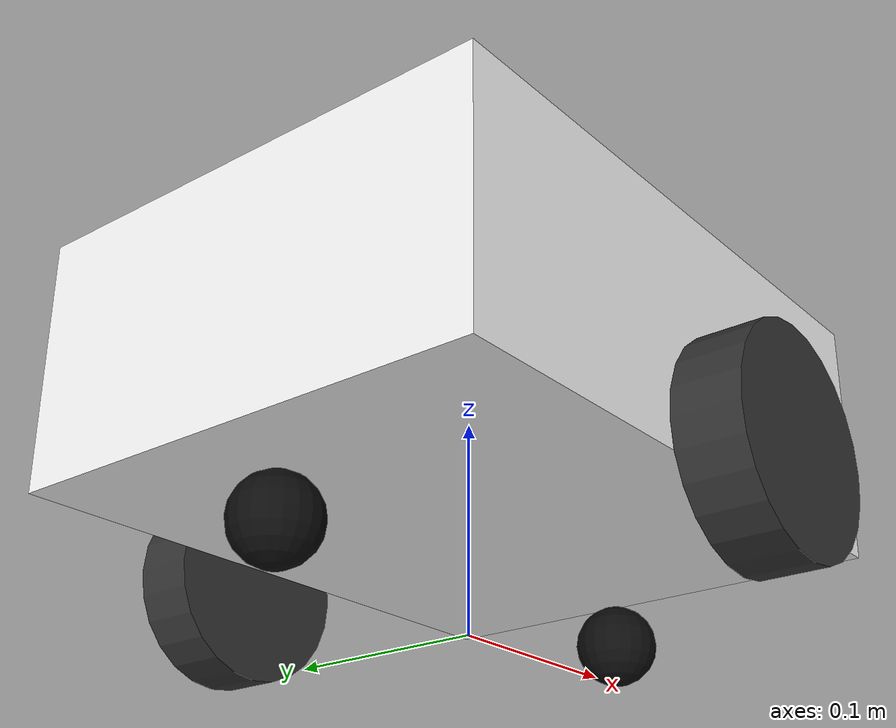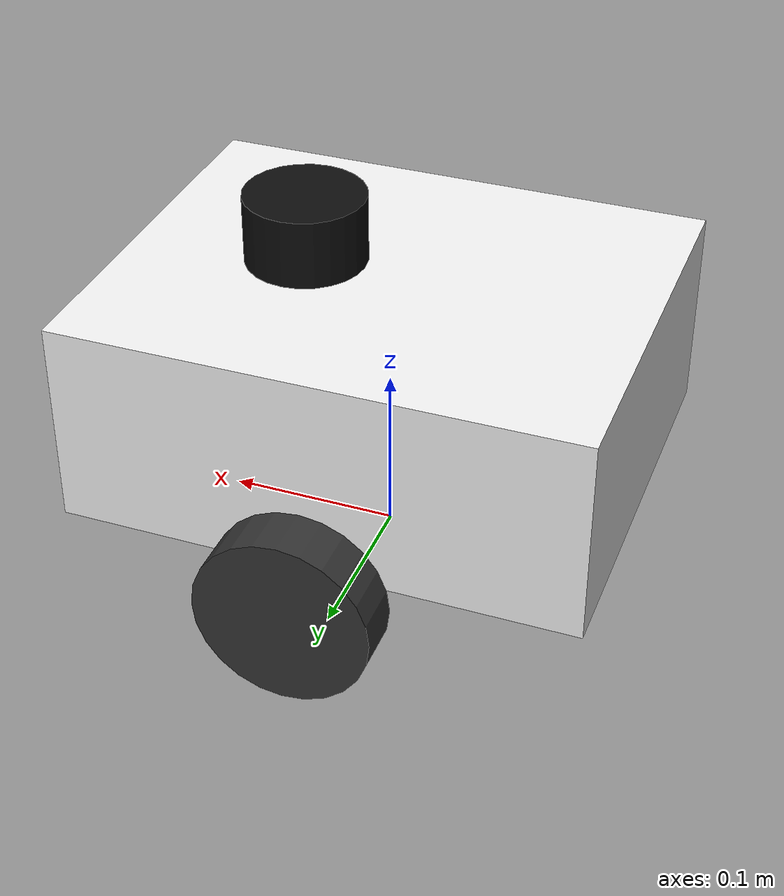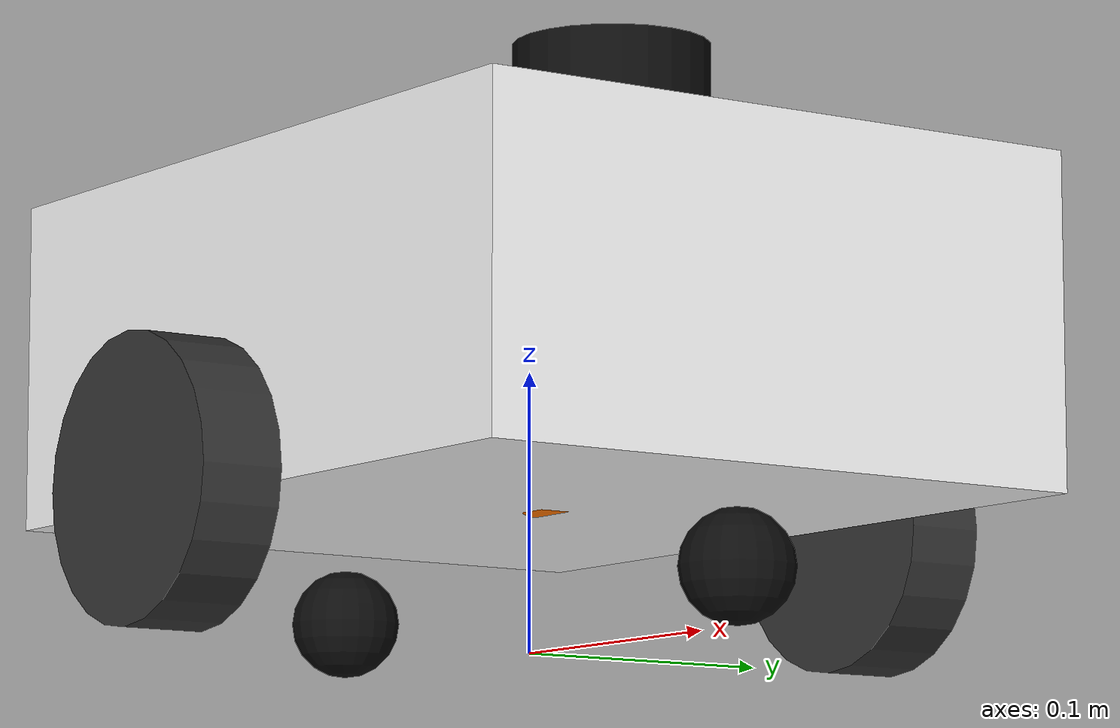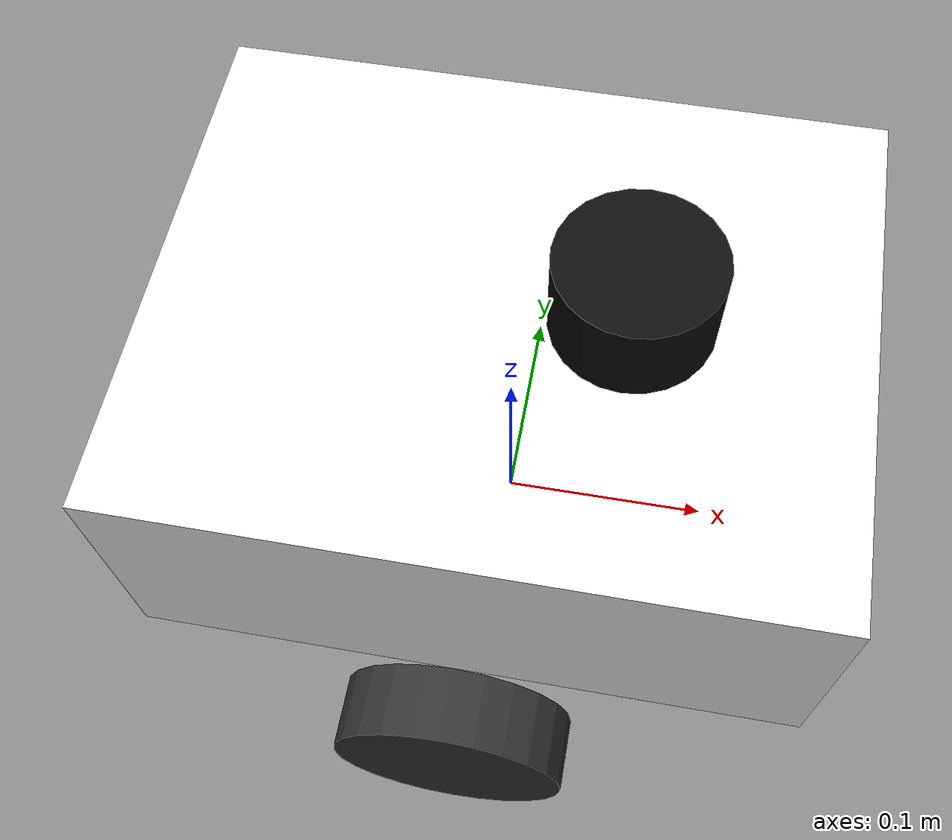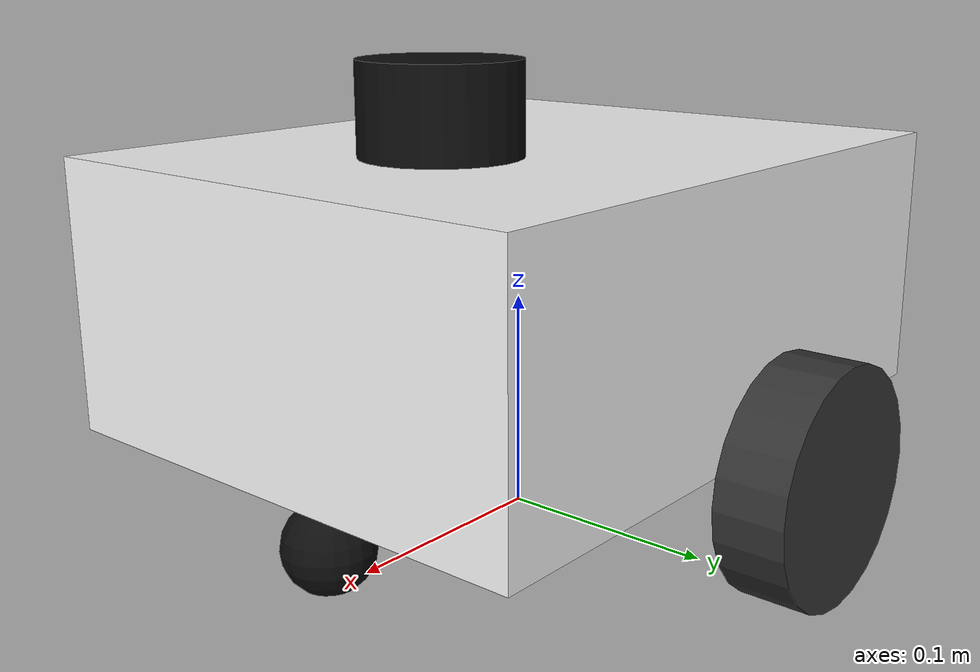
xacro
<?xml version="1.0"?>
<robot name="atlas" xmlns:xacro="http://www.ros.org/wiki/xacro">

  <xacro:include filename="$(find atlas_description)/urdf/materials.xacro"/>
  <xacro:include filename="$(find atlas_description)/urdf/inertial_macros.xacro"/>
  <xacro:include filename="$(find atlas_description)/urdf/wheel.xacro"/>
  <xacro:include filename="$(find atlas_description)/urdf/sensors.xacro"/>

  <!-- Khung robot (base) -->
  <xacro:property name="base_length" value="0.30"/>
  <xacro:property name="base_width" value="0.24"/>
  <xacro:property name="base_height" value="0.12"/>
  <xacro:property name="base_mass" value="5.0"/>

  <xacro:property name="wheel_radius" value="0.05"/>
  <xacro:property name="wheel_width" value="0.03"/>
  <xacro:property name="wheel_mass" value="0.3"/>
  <xacro:property name="wheel_separation" value="0.30"/>

  <!-- 2 bánh đỡ (caster), đặt cả trước lẫn sau, xem giải thích trong wheel.xacro
       về lý do cần 2 caster thay vì 1 (chống lật cả 2 hướng, trục bánh giữ đúng x=0). -->
  <xacro:property name="caster_radius" value="0.02"/>
  <xacro:property name="caster_mass" value="0.05"/>

  <!-- LiDAR 2D, đặt trên nóc, hơi lệch về phía trước để không bị caster/dây cản góc quét -->
  <xacro:property name="lidar_radius" value="0.035"/>
  <xacro:property name="lidar_height" value="0.04"/>
  <xacro:property name="lidar_mass" value="0.15"/>
  <xacro:property name="lidar_x_offset" value="0.05"/>

  <!-- IMU, đặt gần tâm robot -->
  <xacro:property name="imu_size" value="0.02"/>
  <xacro:property name="imu_mass" value="0.05"/>

  <link name="base_footprint"/>

  <joint name="base_joint" type="fixed">
    <parent link="base_footprint"/>
    <child link="base_link"/>
    <origin xyz="0 0 ${wheel_radius}" rpy="0 0 0"/>
  </joint>

  <link name="base_link">
    <visual>
      <origin xyz="0 0 ${base_height / 2}" rpy="0 0 0"/>
      <geometry>
        <box size="${base_length} ${base_width} ${base_height}"/>
      </geometry>
      <material name="atlas_white"/>
    </visual>
    <collision>
      <origin xyz="0 0 ${base_height / 2}" rpy="0 0 0"/>
      <geometry>
        <box size="${base_length} ${base_width} ${base_height}"/>
      </geometry>
    </collision>
    <xacro:inertial_box mass="${base_mass}" x="${base_length}" y="${base_width}" z="${base_height}">
      <origin xyz="0 0 ${base_height / 2}" rpy="0 0 0"/>
    </xacro:inertial_box>
  </link>

  <!-- 2 bánh chủ động: trái (+y) và phải (-y) theo REP-103 (x tới trước, y sang trái, z lên trên) -->
  <xacro:atlas_wheel prefix="left" reflect="1"/>
  <xacro:atlas_wheel prefix="right" reflect="-1"/>

  <!-- Caster trước và sau, đối xứng qua trục bánh (x=0) -->
  <xacro:atlas_caster prefix="front" x_offset="${base_length / 2 - caster_radius - 0.01}"/>
  <xacro:atlas_caster prefix="rear" x_offset="${-(base_length / 2 - caster_radius - 0.01)}"/>

  <!-- LiDAR + IMU (định nghĩa macro trong sensors.xacro) -->
  <xacro:atlas_sensors/>

</robot>

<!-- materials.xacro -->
<robot xmlns:xacro="http://www.ros.org/wiki/xacro">

  <material name="atlas_white">
    <color rgba="0.95 0.95 0.95 1.0"/>
  </material>

  <material name="atlas_dark_grey">
    <color rgba="0.2 0.2 0.2 1.0"/>
  </material>

  <material name="atlas_orange">
    <color rgba="1.0 0.45 0.0 1.0"/>
  </material>

  <material name="atlas_black">
    <color rgba="0.05 0.05 0.05 1.0"/>
  </material>

</robot>

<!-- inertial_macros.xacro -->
<robot xmlns:xacro="http://www.ros.org/wiki/xacro">

  <!-- Công thức inertia chuẩn cho các khối hình học cơ bản, dùng chung cho mọi link.
       origin_xyz/rpy cho phép đặt tâm khối lượng lệch khỏi gốc link khi cần. -->

  <xacro:macro name="inertial_box" params="mass x y z *origin">
    <inertial>
      <xacro:insert_block name="origin"/>
      <mass value="${mass}"/>
      <inertia ixx="${(1/12) * mass * (y*y + z*z)}" ixy="0.0" ixz="0.0"
               iyy="${(1/12) * mass * (x*x + z*z)}" iyz="0.0"
               izz="${(1/12) * mass * (x*x + y*y)}"/>
    </inertial>
  </xacro:macro>

  <xacro:macro name="inertial_cylinder" params="mass radius length *origin">
    <inertial>
      <xacro:insert_block name="origin"/>
      <mass value="${mass}"/>
      <inertia ixx="${(1/12) * mass * (3*radius*radius + length*length)}" ixy="0.0" ixz="0.0"
               iyy="${(1/12) * mass * (3*radius*radius + length*length)}" iyz="0.0"
               izz="${(1/2) * mass * radius*radius}"/>
    </inertial>
  </xacro:macro>

  <xacro:macro name="inertial_sphere" params="mass radius *origin">
    <inertial>
      <xacro:insert_block name="origin"/>
      <mass value="${mass}"/>
      <inertia ixx="${(2/5) * mass * radius*radius}" ixy="0.0" ixz="0.0"
               iyy="${(2/5) * mass * radius*radius}" iyz="0.0"
               izz="${(2/5) * mass * radius*radius}"/>
    </inertial>
  </xacro:macro>

</robot>

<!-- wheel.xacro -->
<robot xmlns:xacro="http://www.ros.org/wiki/xacro">

  <!-- Một bánh chủ động (continuous joint quanh trục Y của bánh).
       prefix: "left"/"right", reflect: 1 (trái) hoặc -1 (phải), quyết định dấu của y_offset -->
  <xacro:macro name="atlas_wheel" params="prefix reflect">
    <link name="${prefix}_wheel_link">
      <visual>
        <origin xyz="0 0 0" rpy="${pi/2} 0 0"/>
        <geometry>
          <cylinder radius="${wheel_radius}" length="${wheel_width}"/>
        </geometry>
        <material name="atlas_dark_grey"/>
      </visual>
      <collision>
        <origin xyz="0 0 0" rpy="${pi/2} 0 0"/>
        <geometry>
          <cylinder radius="${wheel_radius}" length="${wheel_width}"/>
        </geometry>
      </collision>
      <xacro:inertial_cylinder mass="${wheel_mass}" radius="${wheel_radius}" length="${wheel_width}">
        <origin xyz="0 0 0" rpy="${pi/2} 0 0"/>
      </xacro:inertial_cylinder>
    </link>

    <joint name="${prefix}_wheel_joint" type="continuous">
      <parent link="base_link"/>
      <child link="${prefix}_wheel_link"/>
      <origin xyz="0 ${reflect * wheel_separation / 2} 0" rpy="0 0 0"/>
      <axis xyz="0 1 0"/>
    </joint>
  </xacro:macro>

  <xacro:macro name="atlas_caster" params="prefix x_offset">
    <link name="${prefix}_caster_link">
      <visual>
        <geometry>
          <sphere radius="${caster_radius}"/>
        </geometry>
        <material name="atlas_black"/>
      </visual>
      <collision>
        <geometry>
          <sphere radius="${caster_radius}"/>
        </geometry>
      </collision>
      <xacro:inertial_sphere mass="${caster_mass}" radius="${caster_radius}">
        <origin xyz="0 0 0" rpy="0 0 0"/>
      </xacro:inertial_sphere>
    </link>

    <joint name="${prefix}_caster_joint" type="fixed">
      <parent link="base_link"/>
      <child link="${prefix}_caster_link"/>
      <origin xyz="${x_offset} 0 ${-wheel_radius + caster_radius}" rpy="0 0 0"/>
    </joint>
  </xacro:macro>

</robot>

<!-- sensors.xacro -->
<robot xmlns:xacro="http://www.ros.org/wiki/xacro">

  <xacro:macro name="atlas_sensors">

  <link name="lidar_link">
    <visual>
      <geometry>
        <cylinder radius="${lidar_radius}" length="${lidar_height}"/>
      </geometry>
      <material name="atlas_black"/>
    </visual>
    <collision>
      <geometry>
        <cylinder radius="${lidar_radius}" length="${lidar_height}"/>
      </geometry>
    </collision>
    <xacro:inertial_cylinder mass="${lidar_mass}" radius="${lidar_radius}" length="${lidar_height}">
      <origin xyz="0 0 0" rpy="0 0 0"/>
    </xacro:inertial_cylinder>
  </link>

  <joint name="lidar_joint" type="fixed">
    <parent link="base_link"/>
    <child link="lidar_link"/>
    <origin xyz="${lidar_x_offset} 0 ${base_height + lidar_height / 2}" rpy="0 0 0"/>
  </joint>

  <link name="imu_link">
    <visual>
      <geometry>
        <box size="${imu_size} ${imu_size} ${imu_size}"/>
      </geometry>
      <material name="atlas_orange"/>
    </visual>
    <collision>
      <geometry>
        <box size="${imu_size} ${imu_size} ${imu_size}"/>
      </geometry>
    </collision>
    <xacro:inertial_box mass="${imu_mass}" x="${imu_size}" y="${imu_size}" z="${imu_size}">
      <origin xyz="0 0 0" rpy="0 0 0"/>
    </xacro:inertial_box>
  </link>

  <!-- IMU thường đặt gần trọng tâm robot để phép đo gia tốc/góc quay ít bị nhiễu bởi cánh tay đòn -->
  <joint name="imu_joint" type="fixed">
    <parent link="base_link"/>
    <child link="imu_link"/>
    <origin xyz="0 0 ${imu_size / 2}" rpy="0 0 0"/>
  </joint>

  </xacro:macro>

</robot>
